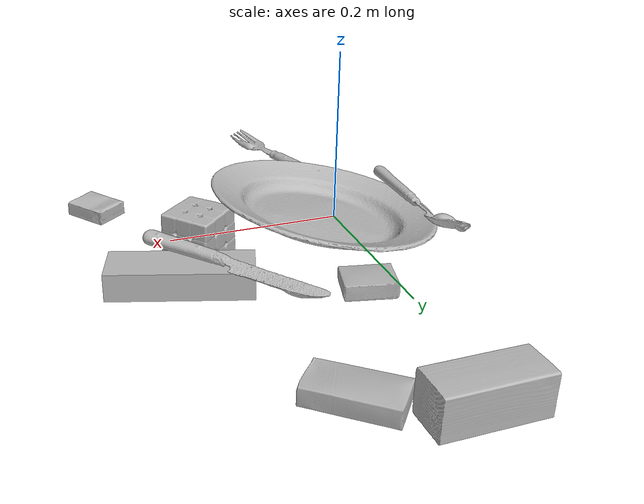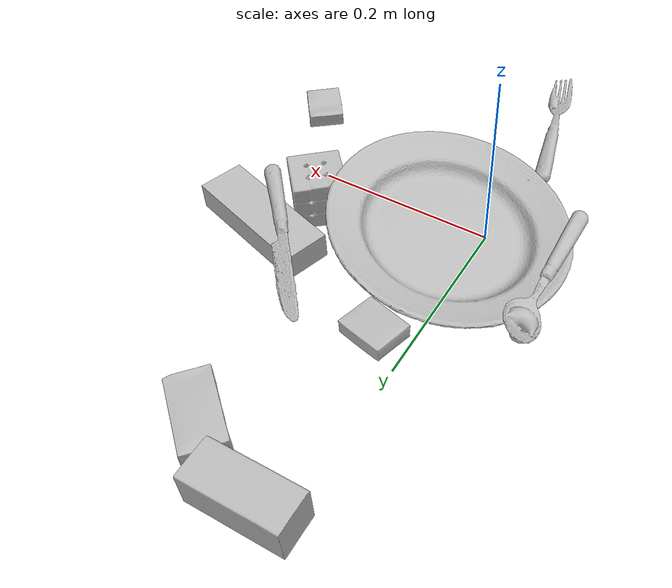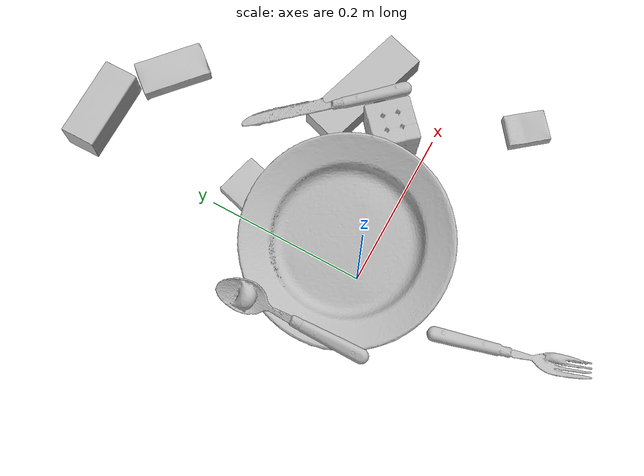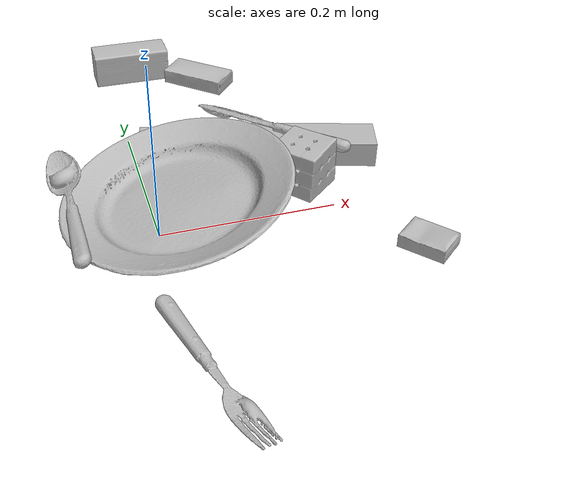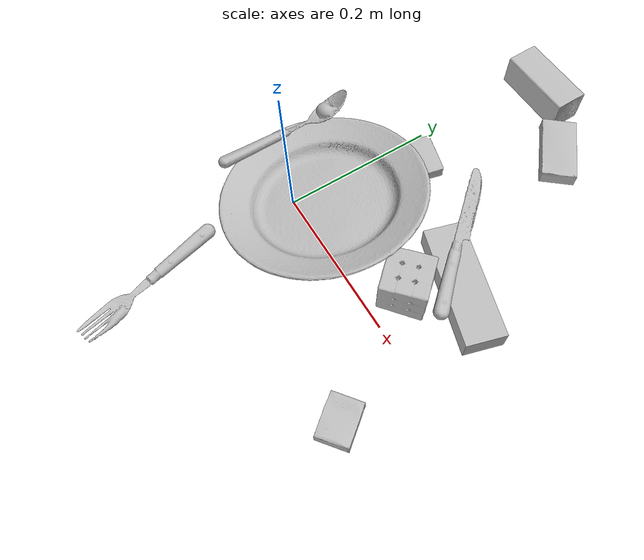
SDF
<sdf version="1.4">
  <world name="default">
    <light name="light1" type="point">
      <pose>0 0 1 0 0 0</pose>
      <diffuse>3 3 3 1</diffuse>
      <specular>3 3 3 1</specular>
    </light>
    <light name="light2" type="point">
      <pose>0 0.5 2 0 0 0</pose>
      <diffuse>1 1 1 1</diffuse>
      <specular>1 1 1 1</specular>
    </light>
    <light name="light3" type="point">
      <pose>0 0.5 2 0 0 0</pose>
      <diffuse>3 3 3 1</diffuse>
      <specular>3 3 3 1</specular>
    </light>
    <scene>
      <ambient>0.7 0.7 0.7</ambient>
    </scene>
    <model name="box11">
      <link name="link_box11">
        <collision name="default">
          <geometry>
            <mesh>
              <uri>model://pudding_box/collision_meshes/collision.obj</uri>
              <scale>0.5 0.5 0.5</scale>
            </mesh>
          </geometry>
          <surface>
            <friction>
              <ode>
                <mu>0.5</mu>
                <mu2>0.5</mu2>
              </ode>
            </friction>
          <contact>
        <ode>
            <max_vel>0</max_vel>
            <min_depth>0.0001</min_depth>
            <kp>1e8</kp>
        </ode>
    </contact></surface>
        </collision>
        <visual name="default">
          <geometry>
            <mesh>
              <uri>model://pudding_box/visual_meshes/visual.dae</uri>
              <scale>0.5 0.5 0.5</scale>
            </mesh>
          </geometry>
        </visual>
        <inertial>
          <mass>0.05641884729266167</mass>
          <pose>0.00024474109522998333 0.000403394311433658 -0.00025944141088984907 0.005213101771016666 -0.006603799659696515 0.020079828883224148</pose>
          <inertia>
            <ixx>1.5944652e-05</ixx>
            <iyy>1.0727675e-05</iyy>
            <izz>2.3546443e-05</izz>
            <ixy>0</ixy>
            <ixz>0</ixz>
            <iyz>0</iyz>
          </inertia>
        </inertial>
      </link>
      <pose>0.03675444424152374 0.17050567269325256 0.009862897917628288 0.022348504772832095 -0.011391722569918274 1.307154397929365</pose>
    </model>
    <model name="box12">
      <link name="link_box12">
        <collision name="default">
          <geometry>
            <mesh>
              <uri>model://wood_block/collision_meshes/collision.obj</uri>
              <scale>0.5 0.5 0.5</scale>
            </mesh>
          </geometry>
          <surface>
            <friction>
              <ode>
                <mu>0.5</mu>
                <mu2>0.5</mu2>
              </ode>
            </friction>
          <contact>
        <ode>
            <max_vel>0</max_vel>
            <min_depth>0.0001</min_depth>
            <kp>1e8</kp>
        </ode>
    </contact></surface>
        </collision>
        <visual name="default">
          <geometry>
            <mesh>
              <uri>model://wood_block/visual_meshes/visual.dae</uri>
              <scale>0.5 0.5 0.5</scale>
            </mesh>
          </geometry>
        </visual>
        <inertial>
          <mass>0.1445801854133606</mass>
          <pose>-2.906657982748584e-06 -0.000285404734313488 0.00013204291462898254 -0.052208162951624955 -0.0051926954609686745 -0.006861377578377277</pose>
          <inertia>
            <ixx>4.836754e-05</ixx>
            <iyy>0.0001527931</iyy>
            <izz>0.00015222155</izz>
            <ixy>0</ixy>
            <ixz>0</ixz>
            <iyz>0</iyz>
          </inertia>
        </inertial>
      </link>
      <pose>0.03410191461443901 0.37782809138298035 0.022629261016845703 -0.005208634852977442 0.005718740965458003 0.004509776678882174</pose>
    </model>
    <model name="box13">
      <link name="link_box13">
        <collision name="default">
          <geometry>
            <mesh>
              <uri>model://sugar_box/collision_meshes/collision.obj</uri>
              <scale>0.5 0.5 0.5</scale>
            </mesh>
          </geometry>
          <surface>
            <friction>
              <ode>
                <mu>0.5</mu>
                <mu2>0.5</mu2>
              </ode>
            </friction>
          <contact>
        <ode>
            <max_vel>0</max_vel>
            <min_depth>0.0001</min_depth>
            <kp>1e8</kp>
        </ode>
    </contact></surface>
        </collision>
        <visual name="default">
          <geometry>
            <mesh>
              <uri>model://sugar_box/visual_meshes/visual.dae</uri>
              <scale>0.5 0.5 0.5</scale>
            </mesh>
          </geometry>
        </visual>
        <inertial>
          <mass>0.1187032163143158</mass>
          <pose>0.0005171863595023751 1.924554817378521e-05 -0.00018182402709499002 -0.0004046259512710581 0.0010506635216588768 0.002615378556274426</pose>
          <inertia>
            <ixx>2.4725794e-05</ixx>
            <iyy>7.991886e-05</iyy>
            <izz>9.567241e-05</izz>
            <ixy>0</ixy>
            <ixz>0</ixz>
            <iyz>0</iyz>
          </inertia>
        </inertial>
      </link>
      <pose>0.12376055121421814 0.3309931755065918 0.011399305425584316 0.0007755670427748166 -0.023433278575170823 2.4295403690726967</pose>
    </model>
    <model name="box21">
      <link name="link_box21">
        <collision name="default">
          <geometry>
            <mesh>
              <uri>model://jenga/collision_meshes/collision.obj</uri>
              <scale>1.0 1.0 1.0</scale>
            </mesh>
          </geometry>
          <surface>
            <friction>
              <ode>
                <mu>0.5</mu>
                <mu2>0.5</mu2>
              </ode>
            </friction>
          <contact>
        <ode>
            <max_vel>0</max_vel>
            <min_depth>0.0001</min_depth>
            <kp>1e8</kp>
        </ode>
    </contact></surface>
        </collision>
        <visual name="default">
          <geometry>
            <mesh>
              <uri>model://jenga/visual_meshes/visual.dae</uri>
              <scale>1.0 1.0 1.0</scale>
            </mesh>
          </geometry>
        </visual>
        <inertial>
          <mass>0.20898528397083282</mass>
          <pose>-2.502855807051674e-07 -0.00010250010382151231 -4.092339804628864e-05 0.0 -7.342154049184251e-07 0.0</pose>
          <inertia>
            <ixx>5.7831294e-05</ixx>
            <iyy>0.0003918633</iyy>
            <izz>0.00041834736</izz>
            <ixy>0</ixy>
            <ixz>0</ixz>
            <iyz>0</iyz>
          </inertia>
        </inertial>
      </link>
      <pose>0.2132757008075714 0.10639531910419464 0.014999994076788425 2.3683274541921855e-08 -6.36142875012297e-09 -0.29890306605928674</pose>
    </model>
    <model name="box22">
      <link name="link_box22">
        <collision name="default">
          <geometry>
            <mesh>
              <uri>model://rubiks_cube/collision_meshes/collision.obj</uri>
              <scale>1.0 1.0 1.0</scale>
            </mesh>
          </geometry>
          <surface>
            <friction>
              <ode>
                <mu>0.5</mu>
                <mu2>0.5</mu2>
              </ode>
            </friction>
          <contact>
        <ode>
            <max_vel>0</max_vel>
            <min_depth>0.0001</min_depth>
            <kp>1e8</kp>
        </ode>
    </contact></surface>
        </collision>
        <visual name="default">
          <geometry>
            <mesh>
              <uri>model://rubiks_cube/visual_meshes/visual.dae</uri>
              <scale>1.0 1.0 1.0</scale>
            </mesh>
          </geometry>
        </visual>
        <inertial>
          <mass>0.28698527812957764</mass>
          <pose>2.6721041649580002e-05 5.2569666877388954e-05 -7.2643156272533815e-06 -0.05467256881712973 -0.09813902151902686 -0.034455808755049874</pose>
          <inertia>
            <ixx>0.00015857864</ixx>
            <iyy>0.00015783912</iyy>
            <izz>0.00015989273</izz>
            <ixy>0</ixy>
            <ixz>0</ixz>
            <iyz>0</iyz>
          </inertia>
        </inertial>
      </link>
      <pose>0.17959094047546387 0.0496407076716423 0.028678901493549347 -1.2861355566298585e-05 -8.888972221355602e-06 0.7226452323237279</pose>
    </model>
    <model name="box23">
      <link name="link_box23">
        <collision name="default">
          <geometry>
            <mesh>
              <uri>model://cracker_box/collision_meshes/collision.obj</uri>
              <scale>0.25 0.25 0.25</scale>
            </mesh>
          </geometry>
          <surface>
            <friction>
              <ode>
                <mu>0.5</mu>
                <mu2>0.5</mu2>
              </ode>
            </friction>
          <contact>
        <ode>
            <max_vel>0</max_vel>
            <min_depth>0.0001</min_depth>
            <kp>1e8</kp>
        </ode>
    </contact></surface>
        </collision>
        <visual name="default">
          <geometry>
            <mesh>
              <uri>model://cracker_box/visual_meshes/visual.dae</uri>
              <scale>0.25 0.25 0.25</scale>
            </mesh>
          </geometry>
        </visual>
        <inertial>
          <mass>0.04468085244297981</mass>
          <pose>0.00023660414444748312 6.358561222441494e-05 -0.0004257383698131889 -0.0003162076226327385 -0.011106488669128663 0.0025467943033026423</pose>
          <inertia>
            <ixx>7.10301e-06</ixx>
            <iyy>1.1728463e-05</iyy>
            <izz>1.6737597e-05</izz>
            <ixy>0</ixy>
            <ixz>0</ixz>
            <iyz>0</iyz>
          </inertia>
        </inertial>
      </link>
      <pose>0.26769623160362244 -0.09602152556180954 0.009120447561144829 -0.011787969852843739 -0.007367158183400515 -0.9083117754011923</pose>
    </model>
    <model name="plate1">
      <link name="link_plate1">
        <collision name="default">
          <geometry>
            <mesh>
              <uri>model://plate/collision_meshes/collision.obj</uri>
              <scale>1.0 1.0 1.0</scale>
            </mesh>
          </geometry>
          <surface>
            <friction>
              <ode>
                <mu>0.5</mu>
                <mu2>0.5</mu2>
              </ode>
            </friction>
          <contact>
        <ode>
            <max_vel>0</max_vel>
            <min_depth>0.0001</min_depth>
            <kp>1e8</kp>
        </ode>
    </contact></surface>
        </collision>
        <visual name="default">
          <geometry>
            <mesh>
              <uri>model://plate/visual_meshes/visual.dae</uri>
              <scale>1.0 1.0 1.0</scale>
            </mesh>
          </geometry>
        </visual>
        <inertial>
          <mass>0.20184239745140076</mass>
          <pose>-0.0006044648471288383 0.00027825962752103806 -0.0010561983799561858 0.0022188105697194356 -0.003225466439192432 0.4526020757977656</pose>
          <inertia>
            <ixx>0.00094422296</ixx>
            <iyy>0.00093519164</iyy>
            <izz>0.0018467589</izz>
            <ixy>0</ixy>
            <ixz>0</ixz>
            <iyz>0</iyz>
          </inertia>
        </inertial>
      </link>
      <pose>0.02862711064517498 0.030173860490322113 0.02784869074821472 -0.0344748689590811 -0.18400641530420134 0.22647050749880782</pose>
    </model>
    <model name="silverware1">
      <link name="link_silverware1">
        <collision name="default">
          <geometry>
            <mesh>
              <uri>model://fork/collision_meshes/collision.obj</uri>
              <scale>1.0 1.0 1.0</scale>
            </mesh>
          </geometry>
          <surface>
            <friction>
              <ode>
                <mu>0.5</mu>
                <mu2>0.5</mu2>
              </ode>
            </friction>
          <contact>
        <ode>
            <max_vel>0</max_vel>
            <min_depth>0.0001</min_depth>
            <kp>1e8</kp>
        </ode>
    </contact></surface>
        </collision>
        <visual name="default">
          <geometry>
            <mesh>
              <uri>model://fork/visual_meshes/visual.dae</uri>
              <scale>1.0 1.0 1.0</scale>
            </mesh>
          </geometry>
        </visual>
        <inertial>
          <mass>0.03151825815439224</mass>
          <pose>-0.029570046812295914 0.00046588233090005815 0.0003218861820641905 -0.013550990610422763 -0.010977834578584837 0.014453900606944525</pose>
          <inertia>
            <ixx>1.1048933e-06</ixx>
            <iyy>8.2285114e-05</iyy>
            <izz>8.2779305e-05</izz>
            <ixy>0</ixy>
            <ixz>0</ixz>
            <iyz>0</iyz>
          </inertia>
        </inertial>
      </link>
      <pose>0.005779636092483997 -0.19859641790390015 0.005698181688785553 -0.1781905175114144 0.025329539200387326 -1.3192362137744411</pose>
    </model>
    <model name="silverware2">
      <link name="link_silverware2">
        <collision name="default">
          <geometry>
            <mesh>
              <uri>model://spoon/collision_meshes/collision.obj</uri>
              <scale>1.0 1.0 1.0</scale>
            </mesh>
          </geometry>
          <surface>
            <friction>
              <ode>
                <mu>0.5</mu>
                <mu2>0.5</mu2>
              </ode>
            </friction>
          <contact>
        <ode>
            <max_vel>0</max_vel>
            <min_depth>0.0001</min_depth>
            <kp>1e8</kp>
        </ode>
    </contact></surface>
        </collision>
        <visual name="default">
          <geometry>
            <mesh>
              <uri>model://spoon/visual_meshes/visual.dae</uri>
              <scale>1.0 1.0 1.0</scale>
            </mesh>
          </geometry>
        </visual>
        <inertial>
          <mass>0.04083608463406563</mass>
          <pose>-0.005526324734091759 -0.001603417913429439 -0.0007271658978424966 0.03521537575369321 -0.03906582415196765 0.006150608891198343</pose>
          <inertia>
            <ixx>2.2713682e-06</ixx>
            <iyy>0.0001553799</iyy>
            <izz>0.0001565001</izz>
            <ixy>0</ixy>
            <ixz>0</ixz>
            <iyz>0</iyz>
          </inertia>
        </inertial>
      </link>
      <pose>-0.0880206823348999 0.04057779535651207 0.0261280108243227 -0.46230523554773695 0.021499079939873565 1.5803715533766245</pose>
    </model>
    <model name="silverware3">
      <link name="link_silverware3">
        <collision name="default">
          <geometry>
            <mesh>
              <uri>model://knife/collision_meshes/collision.obj</uri>
              <scale>1.0 1.0 1.0</scale>
            </mesh>
          </geometry>
          <surface>
            <friction>
              <ode>
                <mu>0.5</mu>
                <mu2>0.5</mu2>
              </ode>
            </friction>
          <contact>
        <ode>
            <max_vel>0</max_vel>
            <min_depth>0.0001</min_depth>
            <kp>1e8</kp>
        </ode>
    </contact></surface>
        </collision>
        <visual name="default">
          <geometry>
            <mesh>
              <uri>model://knife/visual_meshes/visual.dae</uri>
              <scale>1.0 1.0 1.0</scale>
            </mesh>
          </geometry>
        </visual>
        <inertial>
          <mass>0.024411516264081</mass>
          <pose>-0.023785248398780823 0.0015275123296305537 5.062021955382079e-05 0.07305335097392199 0.01724841144103926 -0.007409823891069756</pose>
          <inertia>
            <ixx>6.9289786e-07</ixx>
            <iyy>9.37851e-05</iyy>
            <izz>9.400826e-05</izz>
            <ixy>0</ixy>
            <ixz>0</ixz>
            <iyz>0</iyz>
          </inertia>
        </inertial>
      </link>
      <pose>0.16904431581497192 0.134225532412529 0.03338226303458214 0.19946755786164402 0.03621534857183078 2.276609290513347</pose>
    </model>
  <physics type="ode">
      <max_contacts>50</max_contacts>
      <ode>
        <solver>
          <type>quick</type>
          <iters>75</iters>
        </solver>
        <constraints>
          <contact_max_correcting_vel>0</contact_max_correcting_vel>
          <contact_surface_layer>0</contact_surface_layer>
        </constraints>
      </ode>
    </physics></world>
</sdf>
